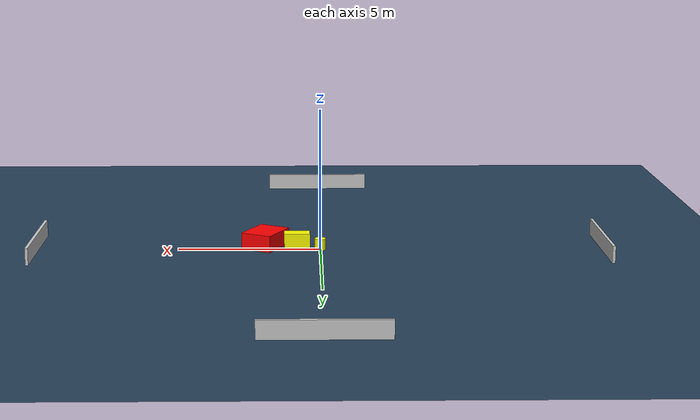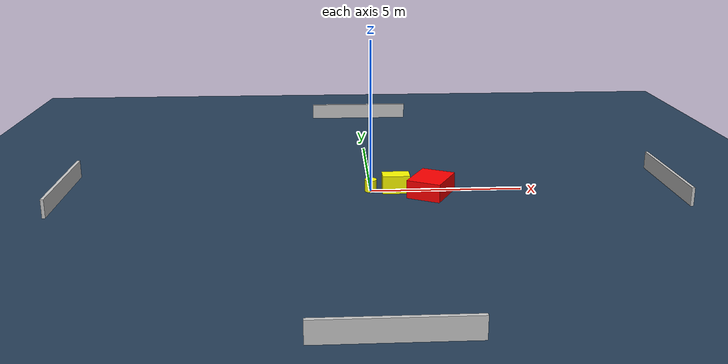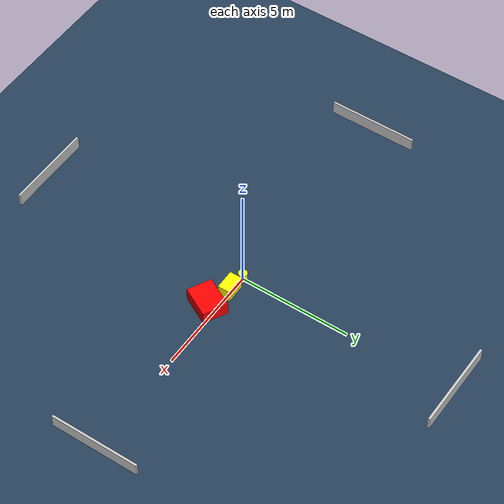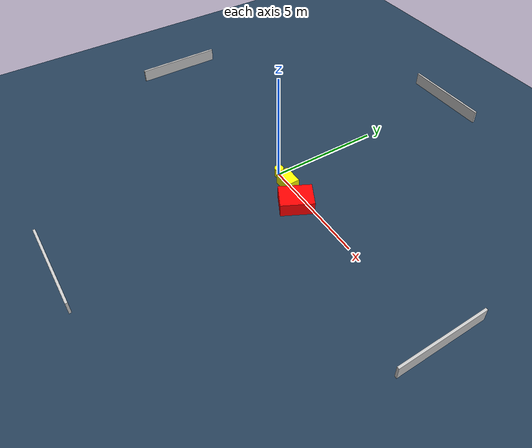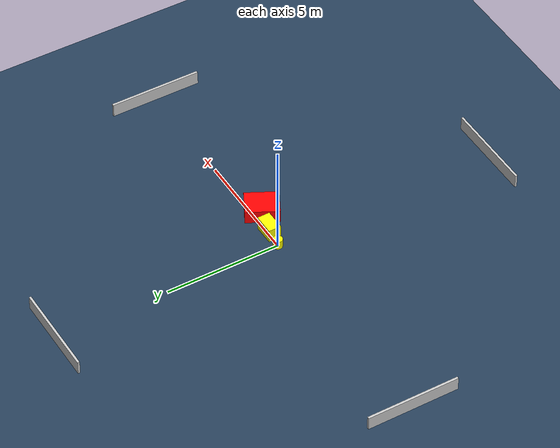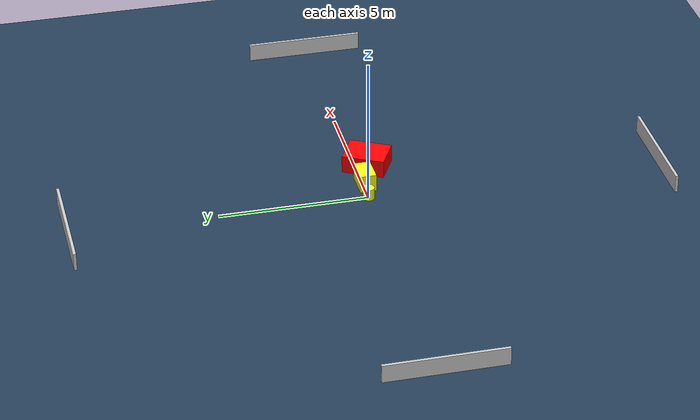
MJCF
<?xml version="1.0" ?>
<mujoco model="generated_environment">
  <option timestep="0.01" integrator="RK4" cone="elliptic"/>
  <default>
    <geom density="1"/>
  </default>
  <asset>
    <texture builtin="gradient" height="3072" name="skybox" rgb1="0.3 0.5 0.7" rgb2="0 0 0" type="skybox" width="512"/>
    <texture builtin="checker" height="300" name="groundplane" rgb1="0.2 0.3 0.4" rgb2="0.1 0.2 0.3" type="2d" width="300"/>
    <material name="groundplane" reflectance="0.2" texrepeat="5 5" texture="groundplane"/>
  </asset>
  <worldbody>
    <light dir="0 0 -1" directional="true" pos="0 0 1.5"/>
    <geom condim="3" friction="0.5 0.005 0.001" material="groundplane" name="floor" pos="0 0 0" size="0 0 0.05" type="plane"/>
    <body name="walls">
      <geom name="wall_1" condim="4" pos="-10.0 0.0 0.3" rgba="0.800000011920929 0.800000011920929 0.800000011920929 1.0" size="0.05 2.0 0.3" type="box"/>
      <geom name="wall_2" condim="4" pos="10.0 0.0 0.3" rgba="0.800000011920929 0.800000011920929 0.800000011920929 1.0" size="0.05 2.0 0.3" type="box"/>
      <geom name="wall_3" condim="4" pos="0.0 -10.0 0.3" rgba="0.800000011920929 0.800000011920929 0.800000011920929 1.0" size="2.0 0.05 0.3" type="box"/>
      <geom name="wall_4" condim="4" pos="0.0 10.0 0.3" rgba="0.800000011920929 0.800000011920929 0.800000011920929 1.0" size="2.0 0.05 0.3" type="box"/>
    </body>
    <body name="robot">
      <joint name="joint_x" type="slide" pos="0 0 0" axis="1 0 0"/>
      <joint name="joint_y" type="slide" pos="0 0 0" axis="0 1 0"/>
      <geom name="robot" type="cylinder" pos="0.0 0.0 0.2" size="0.2 0.2 0.0" mass="5.0" friction="1.0 0.005 0.0001" condim="4" rgba="1.0 1.0 0.0 1.0"/>
    </body>
    <body name="obstacle_1_movable">
      <geom name="obstacle_1_movable" condim="4" pos="0.8173329319036661 -0.08044969598661561 0.3" euler="0 0 0.5460670466673578" friction="0.0 0.005 0.001" rgba="1.0 1.0 0.0 1.0" size="0.4504248769219126 0.2765403722427305 0.3" type="box" mass="0.1"/>
      <joint type="free"/>
    </body>
    <body name="obstacle_2_static">
      <geom name="obstacle_2_static" condim="4" pos="1.9441633416876305 -0.4079226868997451 0.3" euler="0 0 62.32579241740996" friction="0.0 0.005 0.001" rgba="1.0 0.0 0.0 1.0" size="0.718332580634923 0.566099893829066 0.3" type="box"/>
    </body>
  </worldbody>
  <actuator>
    <motor name="actuator_x" joint="joint_x" gear="1" ctrlrange="-1 1"/>
    <motor name="actuator_y" joint="joint_y" gear="1" ctrlrange="-1 1"/>
  </actuator>
</mujoco>
